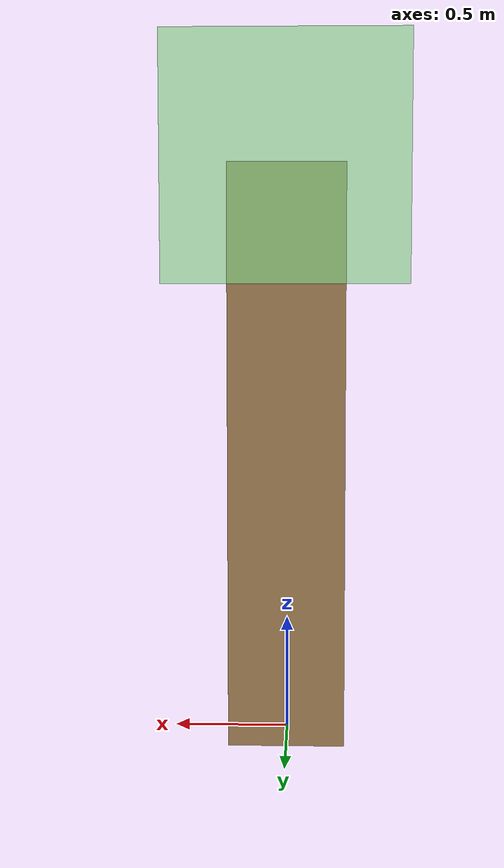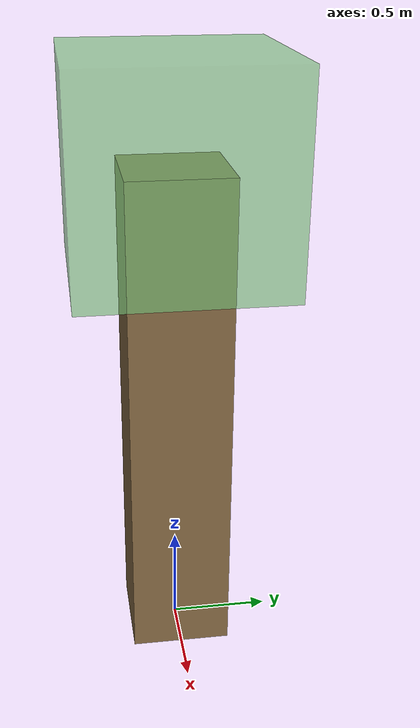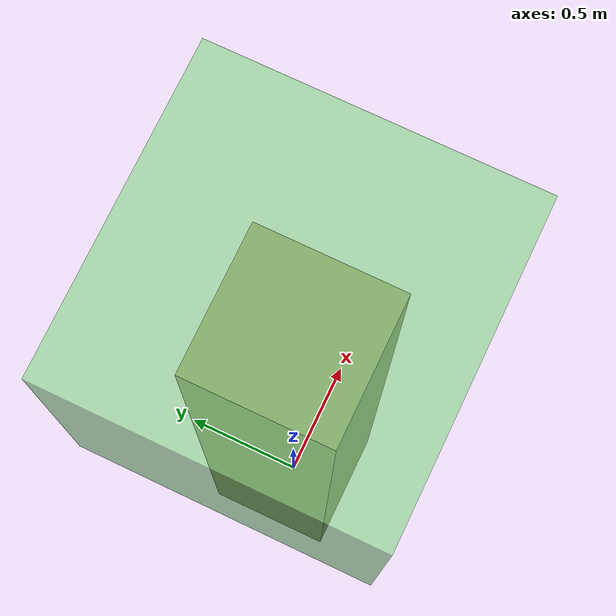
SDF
<sdf version="1.5">
  <model name="tree">
    <link name="tree">
      <visual name="visual_Tree">
        <pose>0.0 0.0 2.5 0.0 0.0 0.0</pose>
        <geometry>
          <box>
            <size>1.0 1.0 1.0</size>
          </box>
        </geometry>
        <material>
          <diffuse>0.5 0.8 0.5 0.65</diffuse>
        </material>
      </visual>
      <collision name="collision_Tree">
        <pose>0.0 0.0 2.5 0.0 0.0 0.0</pose>
        <geometry>
          <box>
            <size>1.0 1.0 1.0</size>
          </box>
        </geometry>
      </collision>

      <visual name="visual_trunk">
        <pose>0.0 0.0 1.25 0.0 0.0 0.0</pose>
        <geometry>
          <box>
            <size>0.5 0.5 2.5</size>
          </box>
        </geometry>
        <material>
          <diffuse>0.5098 0.4 0.2549 1.0</diffuse>
        </material>
      </visual>
      <collision name="collision_trunk">
        <pose>0.0 0.0 1.25 0.0 0.0 0.0</pose>
        <geometry>
          <box>
            <size>0.5 0.5 2.5</size>
          </box>
        </geometry>
      </collision>
    </link>
  </model>
</sdf>
